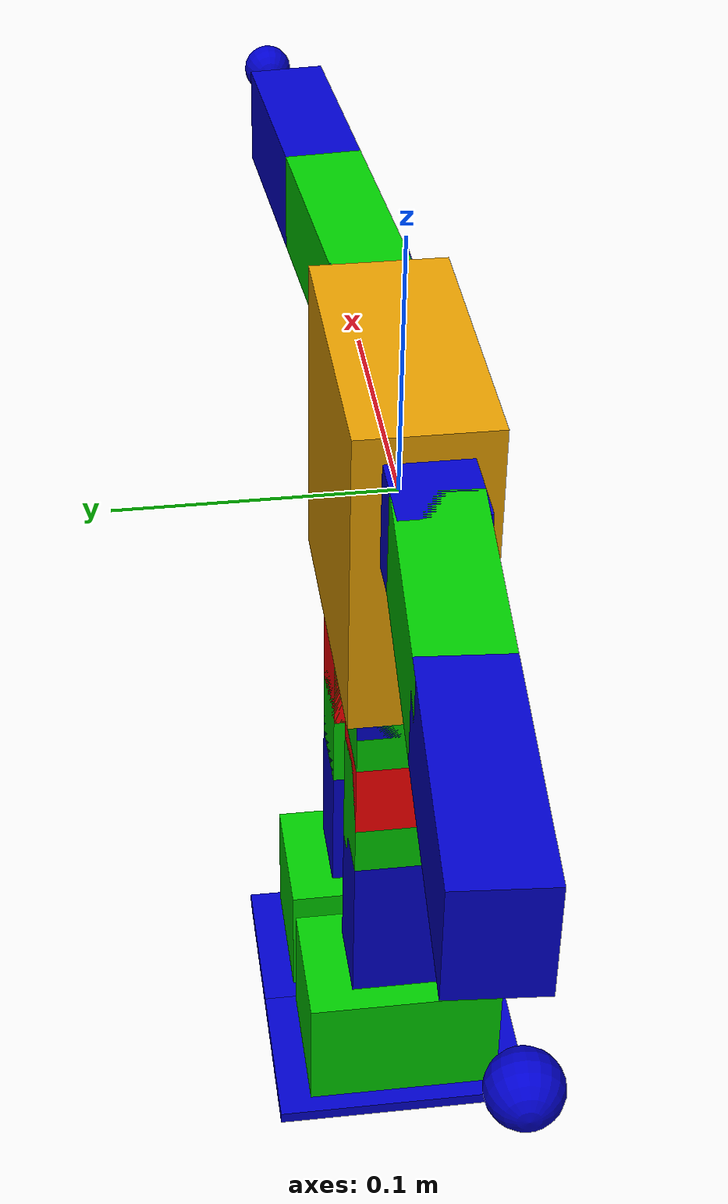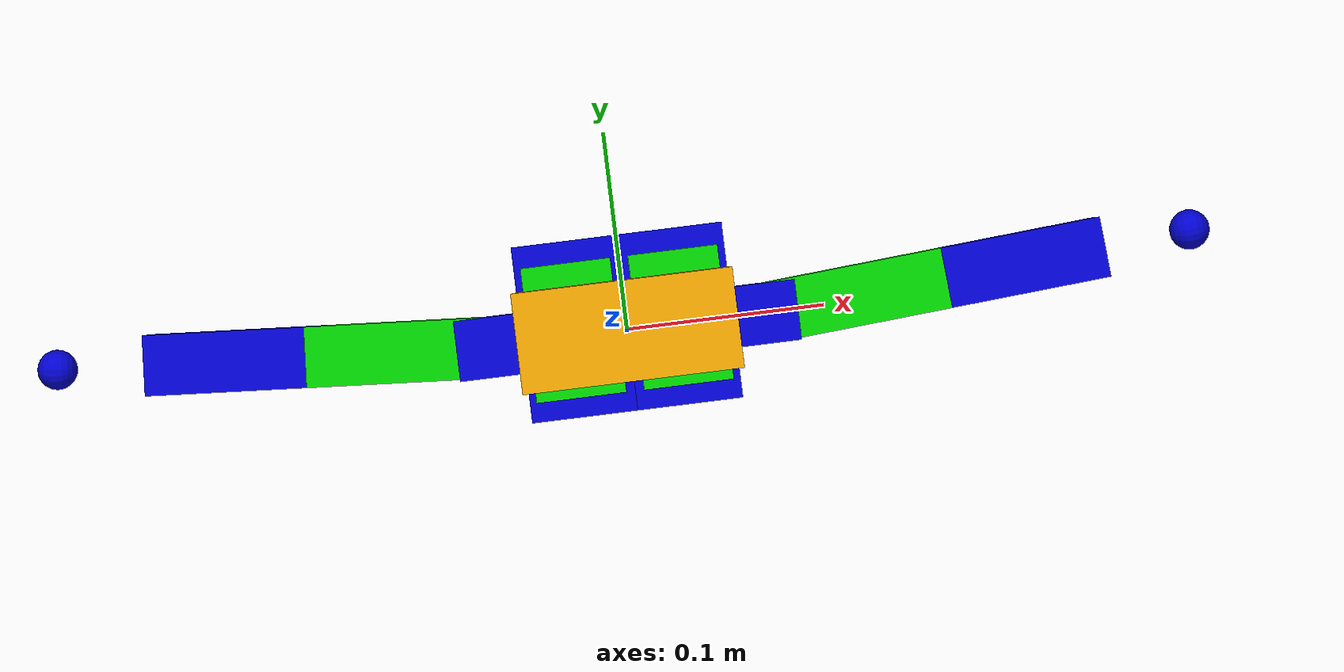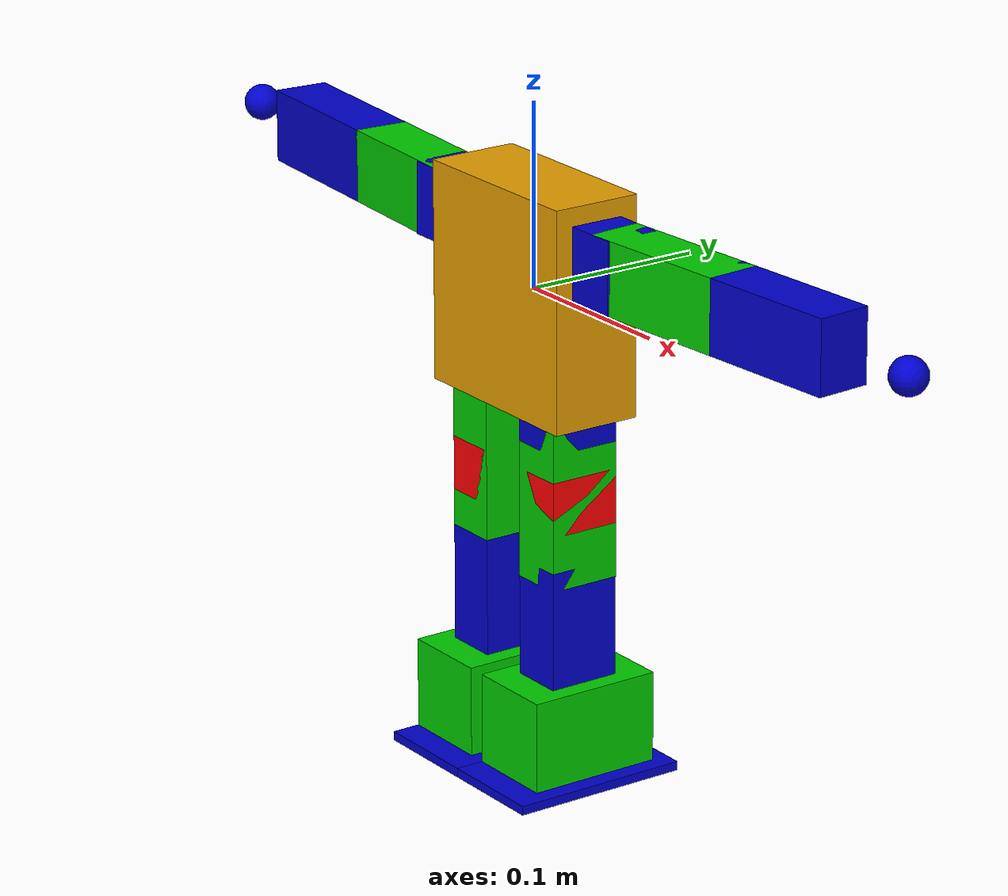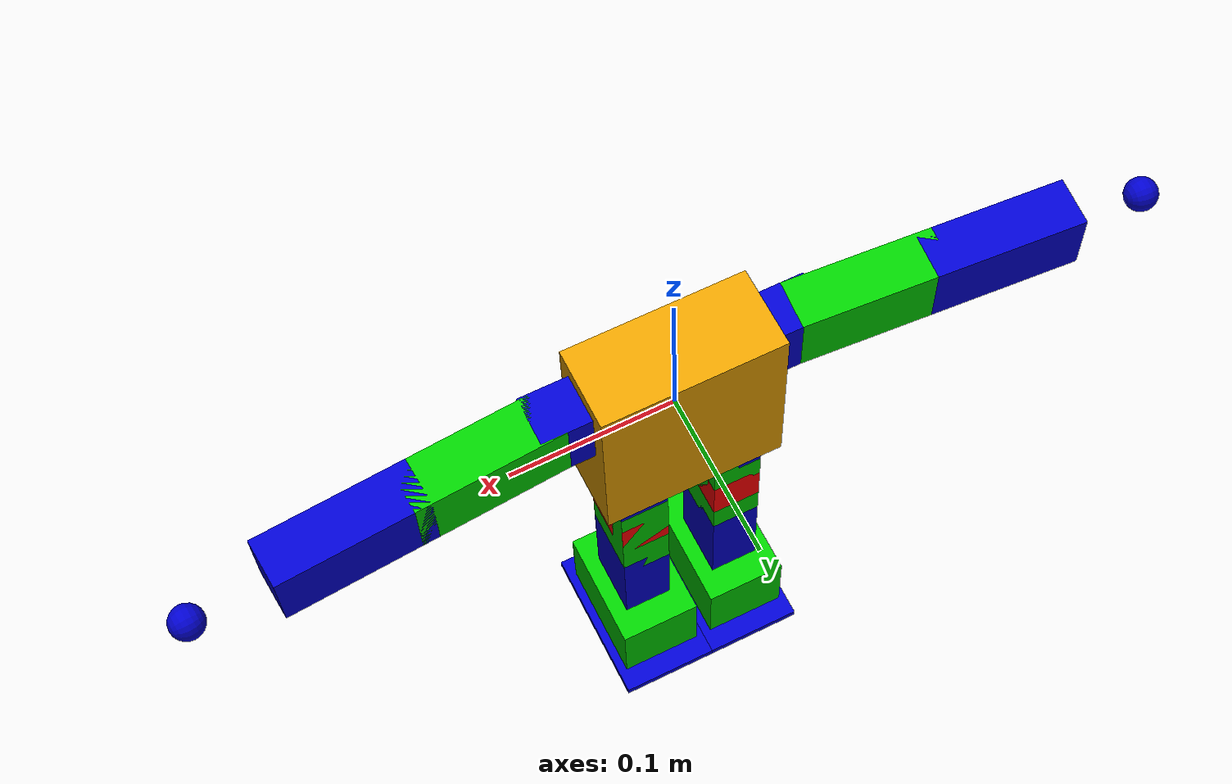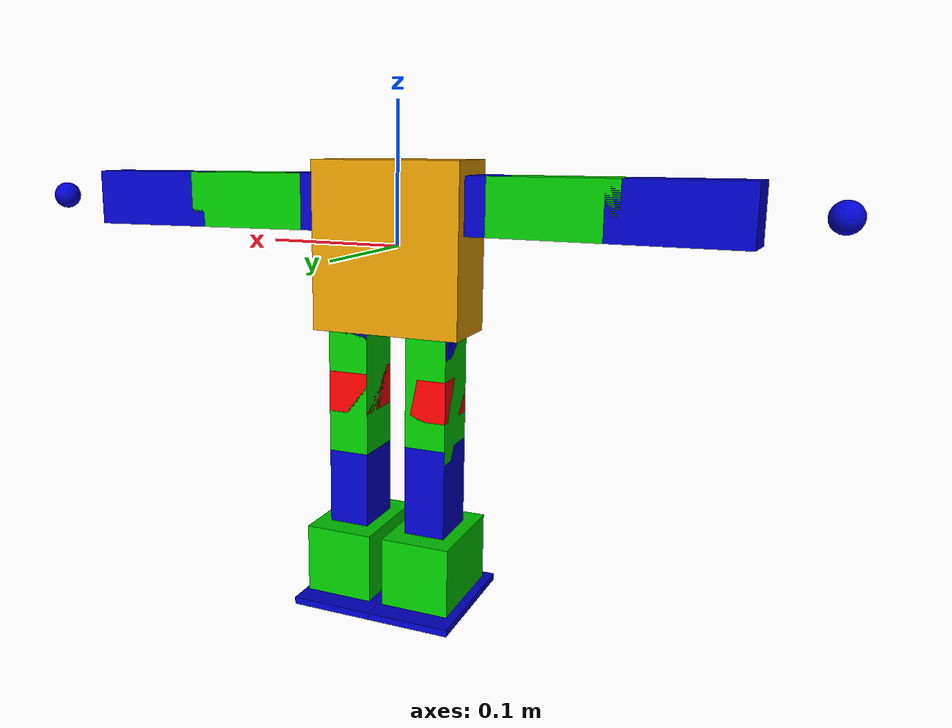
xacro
<?xml version="1.0"?>

<robot name="awesome-o" xmlns:xacro="http://www.ros.org/wiki/xacro">

    <xacro:property name="pi" value="3.14159265359" />
    <xacro:property name="pi_half" value="1.57079632679" />

    <xacro:macro name="arm" params="prefix reflect">
        <link name="${prefix}_shoulder">
            <visual>
                <geometry>
                    <box size="0.03 0.04 0.03"/>
                </geometry>
                <origin rpy="0 0 0" xyz="0 0 0"/>
                <material name="blue">
                    <color rgba="0 0 .8 1"/>
                </material>
            </visual>
        </link>

        <joint name="${prefix}_SAA" type="revolute">
            <parent link="base_link"/>
            <child link="${prefix}_shoulder"/>
            <origin rpy="${pi_half} 0 0" xyz="${reflect*0.070} 0 0.03"/>
            <axis xyz="${reflect} 0 0"/>
            <limit effort="1000.0" lower="-${pi}" upper="${pi}" velocity="0.5"/>
        </joint>

        <link name="${prefix}_upper_arm">
            <visual>
                <geometry>
                    <box size="0.03 0.04 0.09"/>
                </geometry>
                <material name="green">
                    <color rgba="0 0.8 0 1"/>
                </material>
                <origin rpy="0 0 0" xyz="0 0 -0.045"/>
            </visual>
        </link>

	  <joint name="${prefix}_SFE" type="revolute">
	    <parent link="${prefix}_shoulder"/>
	    <child link="${prefix}_upper_arm"/>
	    <origin rpy="0 ${reflect*-1.5} 0" xyz="0.00 0 0.0"/>
	    <axis xyz="0 -1 0"/>
	    <limit effort="1000.0" lower="-3.14" upper="3.14" velocity="0.5"/>
	  </joint>

        <link name="${prefix}_forearm">
            <visual>
                <geometry>
                    <box size="0.03 0.04 0.09"/>
                </geometry>
                <material name="blue"/>
                <origin rpy="0 0 0" xyz="0 0 -0.045"/>
            </visual>
        </link>

	  <joint name="${prefix}_EB" type="revolute">
	    <parent link="${prefix}_upper_arm"/>
	    <child link="${prefix}_forearm"/>
	    <origin rpy="0 0 0" xyz="0.00 0 -0.08"/>
	    <axis xyz="0 -1 0"/>
	    <limit effort="1000.0" lower="-3.14" upper="3.14" velocity="0.5"/>
	  </joint>

	<link name="${prefix}_hand">
            <visual>
                <geometry>
                    <sphere radius="0.01"/>
                </geometry>
                <material name="blue"/>
                <origin rpy="0 0 0" xyz="0 0 -0.045"/>
            </visual>
        </link>

	<joint name="${prefix}_RFE" type="fixed">
	    <parent link="${prefix}_forearm"/>
	    <child link="${prefix}_hand"/>
	    <origin rpy="0 0 0" xyz="0.00 0 -0.09"/>
  	</joint>
    </xacro:macro>

    <xacro:macro name="leg" params="prefix reflect">
        <link name="${prefix}_hip">
	        <visual>
		        <geometry>
			        <box size="0.03 0.04 0.03"/>
		        </geometry>
		        <origin rpy="0 0 0" xyz="0 0 0"/>
		        <material name="blue">
		        <color rgba="0 0 .8 1"/>
		        </material>
	        </visual>
        </link>

        <joint name="${prefix}_HAA" type="revolute">
	        <parent link="base_link"/>
	        <child link="${prefix}_hip"/>
	        <origin rpy="0 0 0" xyz="${reflect*0.030} 0 -0.06"/>
	        <axis xyz="0 0 -1"/>
	        <limit effort="1000.0" lower="-0.5" upper="0.5" velocity="0.5"/>
        </joint>

        <link name="${prefix}_hip_split">
            <visual>
              <geometry>
              <box size="0.03 0.04 0.03"/>
              </geometry>
              <material name="red">
			        <color rgba="1 0 0 1"/>
			        </material>
              <origin rpy="0 0 0" xyz="0 0 -0.045"/>
            </visual>
        </link>

        <joint name="${prefix}_HR" type="revolute">
            <parent link="${prefix}_hip"/>
            <child link="${prefix}_hip_split"/>
            <origin rpy="0 0 0" xyz="0 0 0"/>
            <axis xyz="0 1 0"/>
            <limit effort="1000.0" lower="-1.0" upper="1.0" velocity="0.5"/>
        </joint>

        <link name="${prefix}_upper_leg">
            <visual>
                <geometry>
                    <box size="0.03 0.04 0.09"/>
                </geometry>
                <material name="green"/>
                <origin rpy="0 0 0" xyz="0 0 -0.045"/>
            </visual>
        </link>

        <joint name="${prefix}_HFE" type="revolute">
            <parent link="${prefix}_hip_split"/>
            <child link="${prefix}_upper_leg"/>
            <origin rpy="0 0 0" xyz="0 0 0"/>
            <axis xyz="${reflect*-1} 0 0"/>
            <limit effort="1000.0" lower="-${pi}" upper="${pi}" velocity="0.5"/>
        </joint>

        <link name="${prefix}_calf">
            <visual>
                <geometry>
                    <box size="0.03 0.04 0.09"/>
                </geometry>
                <material name="blue"/>
                <origin rpy="0 0 0" xyz="0 0 -0.045"/>
            </visual>
        </link>

        <joint name="${prefix}_KFE" type="revolute">
            <parent link="${prefix}_upper_leg"/>
            <child link="${prefix}_calf"/>
            <origin rpy="0 0 0" xyz="0 0 -0.08"/>
            <axis xyz="${reflect*1} 0 0"/>
            <limit effort="1000.0" lower="-${pi}" upper="${pi}" velocity="0.5"/>
        </joint>

        <link name="${prefix}_foot">
            <visual>
                <geometry>
                <box size="0.05 0.075 0.05"/>
                </geometry>
                <material name="green"/>
                <origin rpy="0 0 0" xyz="0 0 -0.045"/>
            </visual>
        </link>

        <joint name="${prefix}_AFE" type="revolute">
            <parent link="${prefix}_calf"/>
            <child link="${prefix}_foot"/>
            <origin rpy="0 0 0" xyz="0 0 -0.045"/>
            <axis xyz="${reflect} 0 0"/>
            <limit effort="1000.0" lower="-${pi}" upper="${pi}" velocity="0.5"/>
        </joint>

        <link name="${prefix}_foot_pad">
            <visual>
                <geometry>
                    <box size="0.06 0.10 0.005"/>
                </geometry>
                <material name="blue"/>
                <origin rpy="0 0 0" xyz="0 0 -0.045"/>
            </visual>
        </link>

        <joint name="${prefix}_AR" type="revolute">
            <parent link="${prefix}_foot"/>
            <child link="${prefix}_foot_pad"/>
            <origin rpy="0 0 0" xyz="0 0 -0.03"/>
            <axis xyz="0 -1 0"/>
            <limit effort="1000.0" lower="-${pi}" upper="${pi}" velocity="0.5"/>
        </joint>
    </xacro:macro>

    <link name="base_link">
        <visual>
            <geometry>
                <box size="0.11 0.05 0.12"/>
            </geometry>
        </visual>
    </link>

    <xacro:arm prefix="R" reflect="1"/>
    <xacro:arm prefix="L" reflect="-1"/>
    <xacro:leg prefix="R" reflect="1" />
    <xacro:leg prefix="L" reflect="-1"/>
</robot>
